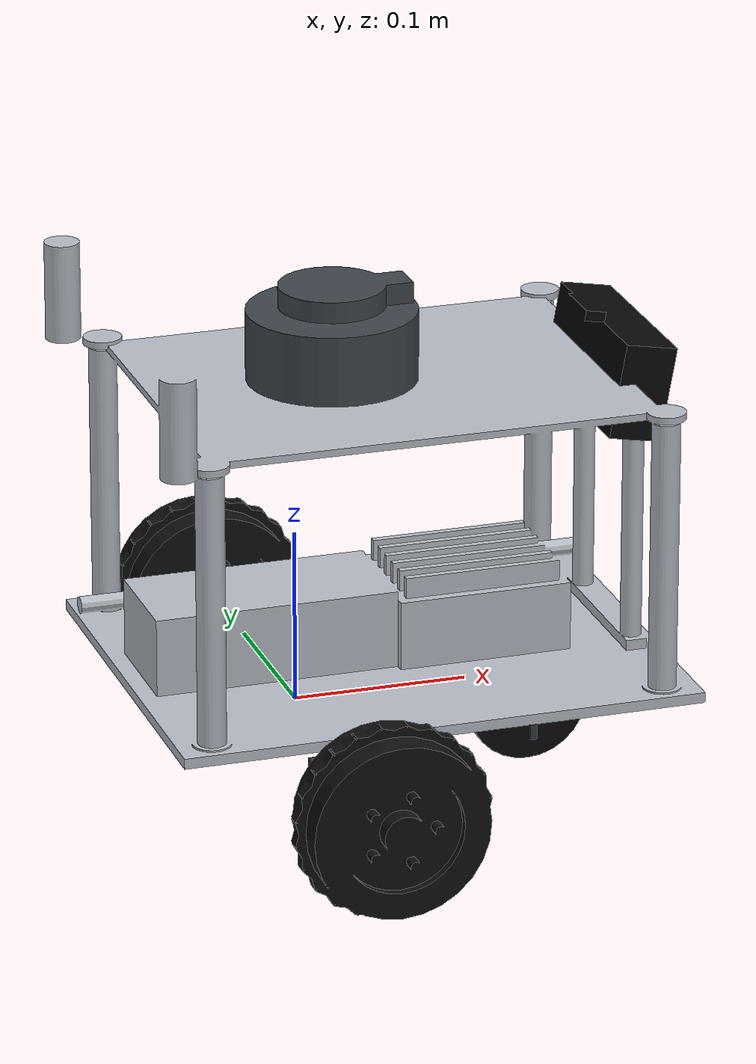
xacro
<?xml version="1.0"?>
<robot xmlns:xacro="http://www.ros.org/wiki/xacro"  name="robot">

    <xacro:arg name="hardware" default="sim"/>
    <xacro:property name="hardware" value="$(arg hardware)"/>

    <xacro:include filename="robot_core.xacro" />

    <xacro:if value="${hardware == 'sim'}">
        <xacro:include filename="gazebo_control.xacro" />
    </xacro:if>
    <xacro:unless value="${hardware == 'sim'}">
        <xacro:include filename="hardware_control.xacro" />
    </xacro:unless>

    <xacro:include filename="lidar.xacro" />

    <xacro:include filename="camera.xacro" />

    <xacro:include filename="imu.xacro" />

</robot>

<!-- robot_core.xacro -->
<robot xmlns:xacro="http://www.ros.org/wiki/xacro">

    <xacro:include filename="mass_properties.xacro"/>
    <xacro:include filename="inertial_macros.xacro"/>

    <xacro:property name="mesh" value="package://mobile_robot_description/meshes"/>
    <xacro:property name="track_half" value="0.175"/>
    <xacro:property name="wheel_r" value="0.05"/>
    <xacro:property name="wheel_w" value="0.04"/>
    <!-- actuators: 12 V gear motor after the gearbox. torque [N*m] and speed [rad/s] limits at the wheel -->
    <xacro:property name="wheel_max_torque" value="2.0"/>
    <xacro:property name="wheel_max_speed" value="12.0"/>

    <material name="aluminium"><color rgba="0.72 0.74 0.78 1"/></material>
    <material name="rubber"><color rgba="0.06 0.06 0.06 1"/></material>
    <material name="motor"><color rgba="0.20 0.22 0.25 1"/></material>
    <material name="orange"><color rgba="1 0.3 0.1 1"/></material>
    <material name="black"><color rgba="0.03 0.03 0.03 1"/></material>
    <material name="lidar_grey"><color rgba="0.25 0.27 0.30 1"/></material>

    <!-- ===================================================================== sprung body -->
    <link name="base_link"/>

    <joint name="chassis_joint" type="fixed">
        <parent link="base_link"/>
        <child link="chassis"/>
        <origin xyz="-0.1 0 0"/>
    </joint>

    <link name="chassis">
        <visual>
            <geometry><mesh filename="${mesh}/chassis.stl"/></geometry>
            <material name="aluminium"/>
        </visual>
        <!-- collision: two boxes only (lower body incl. battery + computer, and the upper deck) -->
        <collision name="body_col">
            <origin xyz="0.15 0 0.07"/>
            <geometry><box size="0.30 0.24 0.10"/></geometry>
        </collision>
        <collision name="deck_col">
            <origin xyz="0.15 0 0.185"/>
            <geometry><box size="0.26 0.20 0.012"/></geometry>
        </collision>
        <xacro:inertial_chassis/>
    </link>

    <xacro:macro name="drive_side" params="side sign">
        <joint name="${side}_carrier_joint" type="prismatic">
            <parent link="base_link"/>
            <child link="${side}_carrier"/>
            <origin xyz="0 ${sign * track_half} 0"/>
            <axis xyz="0 0 1"/>
            <limit lower="${susp_free_z - 0.004}" upper="0.020" effort="200" velocity="1.0"/>
            <dynamics damping="${susp_c}" friction="0.3"/>
        </joint>

        <link name="${side}_carrier">
            <visual>
                <origin xyz="0 ${-sign * 0.0375} 0"/>
                <geometry><box size="0.060 0.035 0.035"/></geometry>
                <material name="motor"/>
            </visual>
            <xacro:call macro="inertial_${side}_carrier"/>
        </link>

        <joint name="${side}_wheel_joint" type="continuous">
            <parent link="${side}_carrier"/>
            <child link="${side}_wheel"/>
            <origin xyz="0 0 0" rpy="${-sign * pi/2} 0 0"/>
            <axis xyz="0 0 ${sign}"/>
            <limit effort="${wheel_max_torque}" velocity="${wheel_max_speed}"/>
            <!-- bearing + gearbox friction -->
            <dynamics damping="0.02" friction="0.04"/>
        </joint>

        <link name="${side}_wheel">
            <visual>
                <geometry><mesh filename="${mesh}/wheel.stl"/></geometry>
                <material name="rubber"/>
            </visual>
            <collision>
                <geometry><cylinder radius="${wheel_r}" length="${wheel_w}"/></geometry>
            </collision>
            <xacro:inertial_wheel/>
        </link>

        <!-- tyre (soft rubber on a hard floor): mu ~ 1.0. kp/kd = contact stiffness/damping (the tyre compliance). -->
        <gazebo reference="${side}_wheel">
            <mu1>1.0</mu1>
            <mu2>0.9</mu2>
            <kp>500000.0</kp>
            <kd>60.0</kd>
            <minDepth>0.0005</minDepth>
            <maxVel>0.5</maxVel>
        </gazebo>
        <gazebo reference="${side}_carrier_joint">
            <springStiffness>${susp_k}</springStiffness>
            <springReference>${susp_free_z}</springReference>
            <implicitSpringDamper>true</implicitSpringDamper>
        </gazebo>
    </xacro:macro>

    <xacro:drive_side side="left" sign="1"/>
    <xacro:drive_side side="right" sign="-1"/>

    <joint name="caster_swivel_joint" type="continuous">
        <parent link="chassis"/>
        <child link="caster_fork"/>
        <origin xyz="0.26 0 0.02"/>
        <axis xyz="0 0 1"/>
        <dynamics damping="0.02" friction="0.006"/>
    </joint>

    <link name="caster_fork">
        <visual>
            <geometry><mesh filename="${mesh}/caster_fork.stl"/></geometry>
            <material name="motor"/>
        </visual>
        <xacro:inertial_caster_fork/>
    </link>

    <joint name="caster_roll_joint" type="continuous">
        <parent link="caster_fork"/>
        <child link="caster_wheel"/>
        <origin xyz="-0.025 0 -0.035"/>
        <axis xyz="0 1 0"/>
        <dynamics damping="0.002" friction="0.002"/>
    </joint>

    <link name="caster_wheel">
        <visual>
            <geometry><mesh filename="${mesh}/caster_wheel.stl"/></geometry>
            <material name="black"/>
        </visual>
        <collision>
            <origin rpy="${pi/2} 0 0"/>
            <geometry><cylinder radius="0.035" length="0.02"/></geometry>
        </collision>
        <xacro:inertial_caster_wheel/>
    </link>

    <!-- hard polyurethane caster tyre: lower friction than the drive tyres -->
    <gazebo reference="caster_wheel">
        <mu1>0.6</mu1>
        <mu2>0.6</mu2>
        <kp>500000.0</kp>
        <kd>40.0</kd>
        <minDepth>0.0005</minDepth>
    </gazebo>

</robot>

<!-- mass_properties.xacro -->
<!-- GENERATED by tools/gen_mass_properties.py. Do not edit by hand: edit the PARTS table and re-run. -->
<robot xmlns:xacro="http://www.ros.org/wiki/xacro">

    <xacro:property name="total_mass" value="4.8350"/>
    <xacro:property name="susp_k" value="1450"/>          <!-- N/m, per drive wheel -->
    <xacro:property name="susp_c" value="52.6"/>           <!-- N*s/m, damping ratio 0.6 -->
    <xacro:property name="susp_sag" value="0.00897"/>   <!-- m, static compression under load -->
    <xacro:property name="susp_free_z" value="-0.00897"/>  <!-- carrier hangs this far below the loaded pose -->

    <xacro:macro name="inertial_chassis">
        <inertial>
            <origin xyz="0.136751 0 0.0727219" rpy="0 0 0"/>
            <mass value="3.506"/>
            <inertia ixx="0.0270984" ixy="0" ixz="0.00126037" iyy="0.0413062" iyz="0" izz="0.0403188"/>
        </inertial>
    </xacro:macro>

    <xacro:macro name="inertial_left_carrier">
        <inertial>
            <origin xyz="0 -0.0332576 0" rpy="0 0 0"/>
            <mass value="0.33"/>
            <inertia ixx="8.89356e-05" ixy="0" ixz="0" iyy="0.000127854" iyz="0" izz="0.000132415"/>
        </inertial>
    </xacro:macro>

    <xacro:macro name="inertial_right_carrier">
        <inertial>
            <origin xyz="0 0.0332576 0" rpy="0 0 0"/>
            <mass value="0.33"/>
            <inertia ixx="8.89356e-05" ixy="0" ixz="0" iyy="0.000127854" iyz="0" izz="0.000132415"/>
        </inertial>
    </xacro:macro>

    <xacro:macro name="inertial_wheel">
        <inertial>
            <origin xyz="0 0 0" rpy="0 0 0"/>
            <mass value="0.14"/>
            <inertia ixx="0.000117792" ixy="0" ixz="0" iyy="0.000117792" iyz="0" izz="0.00019825"/>
        </inertial>
    </xacro:macro>

    <xacro:macro name="inertial_caster_fork">
        <inertial>
            <origin xyz="-0.0125 0 -0.0175" rpy="0 0 0"/>
            <mass value="0.06"/>
            <inertia ixx="1.4625e-05" ixy="0" ixz="0" iyy="1.4625e-05" iyz="0" izz="9e-06"/>
        </inertial>
    </xacro:macro>

    <xacro:macro name="inertial_caster_wheel">
        <inertial>
            <origin xyz="0 0 0" rpy="0 0 0"/>
            <mass value="0.04"/>
            <inertia ixx="1.35833e-05" ixy="0" ixz="0" iyy="2.45e-05" iyz="0" izz="1.35833e-05"/>
        </inertial>
    </xacro:macro>

    <xacro:macro name="inertial_laser">
        <inertial>
            <origin xyz="0 0 -0.002" rpy="0 0 0"/>
            <mass value="0.17"/>
            <inertia ixx="0.000120587" ixy="0" ixz="0" iyy="0.000120587" iyz="0" izz="0.00019584"/>
        </inertial>
    </xacro:macro>

    <xacro:macro name="inertial_camera">
        <inertial>
            <origin xyz="-0.003 0 0" rpy="0 0 0"/>
            <mass value="0.114"/>
            <inertia ixx="0.000143167" ixy="0" ixz="0" iyy="3.67674e-05" iyz="0" izz="0.0001235"/>
        </inertial>
    </xacro:macro>

    <xacro:macro name="inertial_imu">
        <inertial>
            <origin xyz="0 0 0" rpy="0 0 0"/>
            <mass value="0.005"/>
            <inertia ixx="1.70417e-07" ixy="0" ixz="0" iyy="1.70417e-07" iyz="0" izz="3.33333e-07"/>
        </inertial>
    </xacro:macro>

</robot>

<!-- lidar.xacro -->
<robot xmlns:xacro="http://www.ros.org/wiki/xacro">

    <joint name="laser_joint" type="fixed">
        <parent link="chassis"/>
        <child link="laser_frame"/>
        <origin xyz="0.122 0 0.212" rpy="0 0 0"/>
    </joint>

    <link name="laser_frame">
        <visual>
            <geometry><mesh filename="${mesh}/laser.stl"/></geometry>
            <material name="lidar_grey"/>
        </visual>
        <collision>
            <geometry><cylinder radius="0.048" length="0.04"/></geometry>
        </collision>
        <xacro:inertial_laser/>
    </link>

    <gazebo reference="laser_frame">
        <sensor name="laser" type="gpu_lidar">
            <pose>0 0 0 0 0 0</pose>
            <visualize>false</visualize>
            <update_rate>10</update_rate>
            <always_on>true</always_on>
            <ray>
                <scan>
                    <horizontal>
                        <samples>720</samples>
                        <min_angle>-3.14159</min_angle>
                        <max_angle>3.14159</max_angle>
                    </horizontal>
                </scan>
                <range>
                    <min>0.15</min>
                    <max>12</max>
                    <resolution>0.01</resolution>
                </range>
                <!-- A1M8 datasheet: about 1 % of the distance, never below 5 mm -->
                <noise>
                    <type>gaussian</type>
                    <mean>0.0</mean>
                    <stddev>0.012</stddev>
                </noise>
            </ray>
            <topic>scan_raw</topic>
            <gz_frame_id>laser_frame</gz_frame_id>
        </sensor>
    </gazebo>

</robot>

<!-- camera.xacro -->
<robot xmlns:xacro="http://www.ros.org/wiki/xacro">

    <xacro:property name="oakd_hfov" value="1.2566"/>

    <joint name="camera_joint" type="fixed">
        <parent link="chassis"/>
        <child link="camera_link"/>
        <origin xyz="0.285 0 0.181" rpy="0 0.18 0"/>
    </joint>

    <link name="camera_link">
        <visual>
            <geometry><mesh filename="${mesh}/oakd.stl"/></geometry>
            <material name="black"/>
        </visual>
        <collision>
            <geometry><box size="0.030 0.110 0.0545"/></geometry>
        </collision>
        <xacro:inertial_camera/>
    </link>

    <joint name="camera_optical_joint" type="fixed">
        <parent link="camera_link"/>
        <child link="camera_link_optical"/>
        <origin xyz="0 0 0" rpy="${-pi/2} 0 ${-pi/2}"/>
    </joint>

    <link name="camera_link_optical"/>

    <gazebo reference="camera_link">
        <sensor name="camera" type="rgbd_camera">
            <pose>0 0 0 0 0 0</pose>
            <visualize>false</visualize>
            <update_rate>15</update_rate>
            <always_on>true</always_on>
            <camera>
                <horizontal_fov>${oakd_hfov}</horizontal_fov>
                <image>
                    <format>R8G8B8</format>
                    <width>640</width>
                    <height>400</height>
                </image>
                <clip>
                    <near>0.2</near>
                    <far>8.0</far>
                </clip>
                <depth_camera>
                    <clip>
                        <near>0.2</near>
                        <far>8.0</far>
                    </clip>
                </depth_camera>
                <!-- sensor noise on the colour image (about 3 grey levels of 255) -->
                <noise>
                    <type>gaussian</type>
                    <mean>0.0</mean>
                    <stddev>0.012</stddev>
                </noise>
                <!-- OV9282 lens: mild barrel distortion -->
                <distortion>
                    <k1>-0.04</k1>
                    <k2>0.01</k2>
                    <k3>0.0</k3>
                    <p1>0.0</p1>
                    <p2>0.0</p2>
                    <center>0.5 0.5</center>
                </distortion>
            </camera>
            <topic>camera</topic>
            <!-- Frame stamped on images AND point cloud. Gazebo's cloud uses x forward, y left, z up = camera_link.
                 Do NOT use camera_link_optical here: RViz would rotate the cloud 90 degrees. -->
            <gz_frame_id>camera_link</gz_frame_id>
        </sensor>
    </gazebo>

</robot>

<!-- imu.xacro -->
<robot xmlns:xacro="http://www.ros.org/wiki/xacro">

    <joint name="imu_joint" type="fixed">
        <parent link="chassis"/>
        <child link="imu_link"/>
        <origin xyz="0.15 0 0.035"/>
    </joint>

    <link name="imu_link">
        <xacro:inertial_imu/>
    </link>

    <gazebo reference="imu_link">
        <sensor name="imu" type="imu">
            <always_on>true</always_on>
            <update_rate>100</update_rate>
            <visualize>false</visualize>
            <topic>imu</topic>
            <gz_frame_id>imu_link</gz_frame_id>
            <imu>
                <angular_velocity>
                    <x><noise type="gaussian"><mean>0.0</mean><stddev>0.0009</stddev><bias_mean>0.0</bias_mean><bias_stddev>0.0008</bias_stddev><dynamic_bias_stddev>0.00002</dynamic_bias_stddev><dynamic_bias_correlation_time>400.0</dynamic_bias_correlation_time></noise></x>
                    <y><noise type="gaussian"><mean>0.0</mean><stddev>0.0009</stddev><bias_mean>0.0</bias_mean><bias_stddev>0.0008</bias_stddev><dynamic_bias_stddev>0.00002</dynamic_bias_stddev><dynamic_bias_correlation_time>400.0</dynamic_bias_correlation_time></noise></y>
                    <z><noise type="gaussian"><mean>0.0</mean><stddev>0.0009</stddev><bias_mean>0.0</bias_mean><bias_stddev>0.0008</bias_stddev><dynamic_bias_stddev>0.00002</dynamic_bias_stddev><dynamic_bias_correlation_time>400.0</dynamic_bias_correlation_time></noise></z>
                </angular_velocity>
                <linear_acceleration>
                    <x><noise type="gaussian"><mean>0.0</mean><stddev>0.011</stddev><bias_mean>0.0</bias_mean><bias_stddev>0.02</bias_stddev><dynamic_bias_stddev>0.0005</dynamic_bias_stddev><dynamic_bias_correlation_time>300.0</dynamic_bias_correlation_time></noise></x>
                    <y><noise type="gaussian"><mean>0.0</mean><stddev>0.011</stddev><bias_mean>0.0</bias_mean><bias_stddev>0.02</bias_stddev><dynamic_bias_stddev>0.0005</dynamic_bias_stddev><dynamic_bias_correlation_time>300.0</dynamic_bias_correlation_time></noise></y>
                    <z><noise type="gaussian"><mean>0.0</mean><stddev>0.011</stddev><bias_mean>0.0</bias_mean><bias_stddev>0.02</bias_stddev><dynamic_bias_stddev>0.0005</dynamic_bias_stddev><dynamic_bias_correlation_time>300.0</dynamic_bias_correlation_time></noise></z>
                </linear_acceleration>
            </imu>
        </sensor>
    </gazebo>

</robot>
